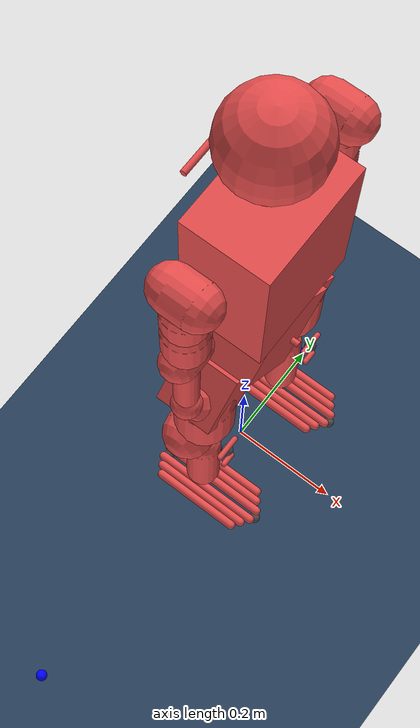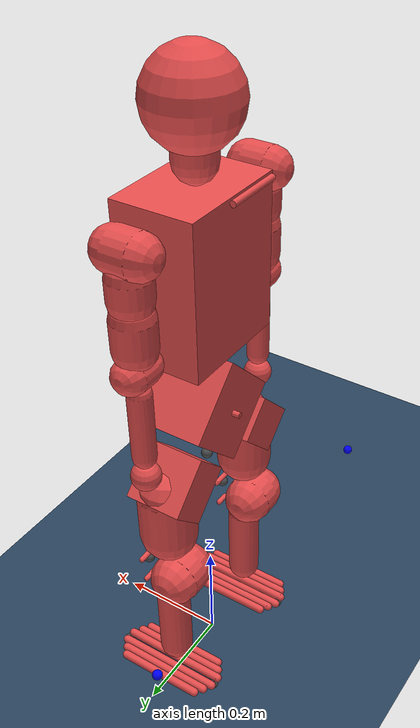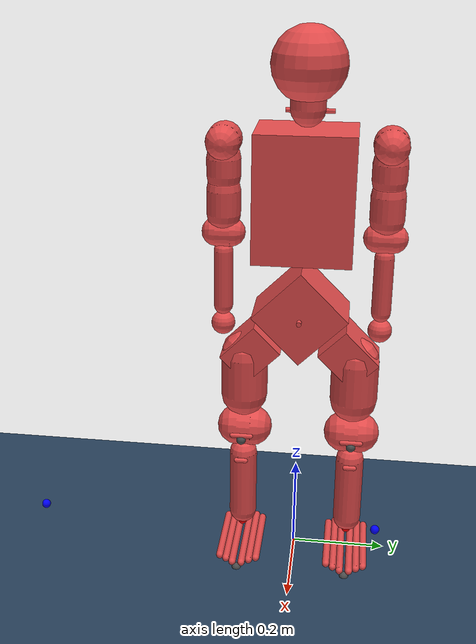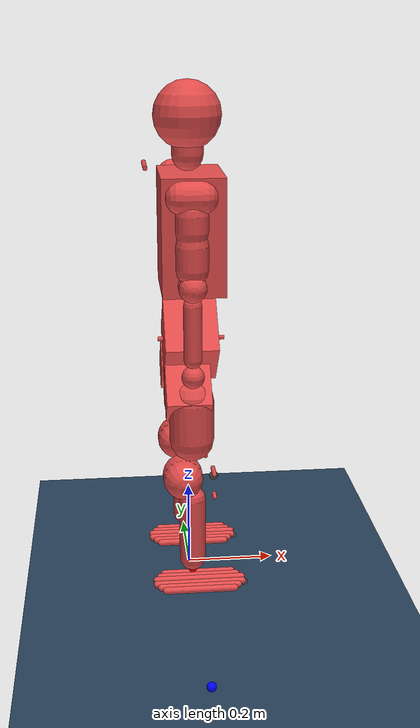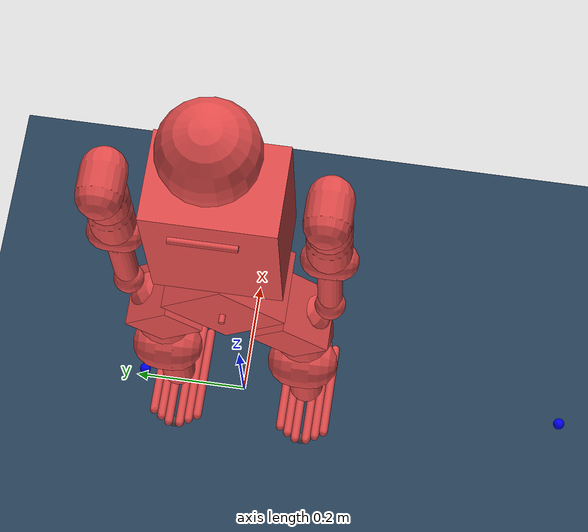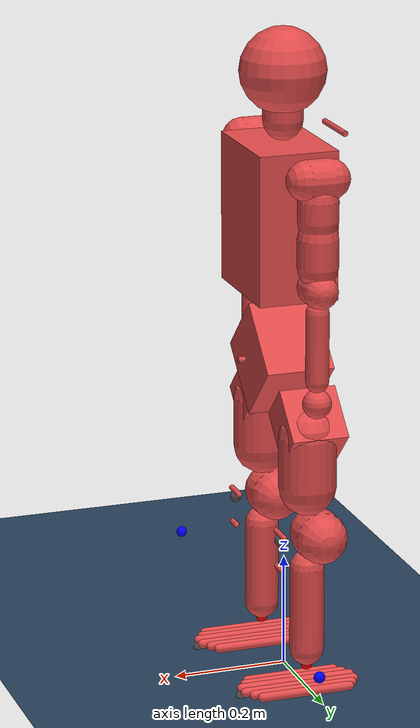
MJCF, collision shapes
<?xml version='1.0' encoding='utf-8'?>
<mujoco model="biped_s14">
  <compiler angle="radian" meshdir="meshes/"/>
  <size njmax="500" nconmax="100" />
  <default>
    <joint limited="true" armature="0.05" damping="0.2" frictionloss="0.02"/>
    <motor ctrllimited="true" ctrlrange="-100 100"/>
    <equality solref="0.005 1"/>
    <default class="collision">
      <geom material="collision" contype="1" conaffinity="1" user="2" rgba="0.9 0.3 0.3 0.2"/>
    </default>
  </default>
  <visual>
    <headlight diffuse="0.6 0.6 0.6" ambient="0.3 0.3 0.3" specular="0 0 0"/>
    <rgba haze="0.15 0.25 0.35 1"/>
    <global azimuth="160" elevation="-20"/>
  </visual>
  <asset>
    <texture type="skybox" builtin="gradient" rgb1="0.3 0.5 0.7" rgb2="0 0 0" width="512" height="3072"/>
    <texture type="2d" name="groundplane" builtin="checker" mark="edge" rgb1="0.2 0.3 0.4" rgb2="0.1 0.2 0.3"
      markrgb="0.8 0.8 0.8" width="300" height="300"/>
    <material name="groundplane" texture="groundplane" texuniform="true" texrepeat="5 5" reflectance="0.2"/>
    <material name="collision" rgba="0.1 0.5 0.9 0"/>
    <mesh name="torso" file="torso.STL"/>
    <mesh name="waist" file="waist.STL"/>
    <mesh name="l_leg_pitch" file="l_leg_pitch.STL"/>
    <mesh name="l_leg_roll" file="l_leg_roll.STL"/>
    <mesh name="l_leg_yaw" file="l_leg_yaw.STL"/>
    <mesh name="l_knee" file="l_knee.STL"/>
    <mesh name="l_foot_pitch" file="l_foot_pitch.STL"/>
    <mesh name="l_foot_roll" file="l_foot_roll.STL"/>
    <mesh name="r_leg_pitch" file="r_leg_pitch.STL"/>
    <mesh name="r_leg_roll" file="r_leg_roll.STL"/>
    <mesh name="r_leg_yaw" file="r_leg_yaw.STL"/>
    <mesh name="r_knee" file="r_knee.STL"/>
    <mesh name="r_foot_pitch" file="r_foot_pitch.STL"/>
    <mesh name="r_foot_roll" file="r_foot_roll.STL"/>
    <mesh name="l_arm_pitch" file="l_arm_pitch.STL"/>
    <mesh name="l_arm_roll" file="l_arm_roll.STL"/>
    <mesh name="l_arm_yaw" file="l_arm_yaw.STL"/>
    <mesh name="l_forearm" file="l_forearm.STL"/>
    <mesh name="r_arm_pitch" file="r_arm_pitch.STL"/>
    <mesh name="r_arm_roll" file="r_arm_roll.STL"/>
    <mesh name="r_arm_yaw" file="r_arm_yaw.STL"/>
    <mesh name="r_forearm" file="r_forearm.STL"/>
    <mesh name="head_yaw" file="head_yaw.STL"/>
    <mesh name="head_pitch" file="head_pitch.STL"/>
  </asset>

  <worldbody>
    <light pos="0 0 3.5" dir="0 0 -1" directional="true"/>
    <geom name="floor" size="0 0 0.05" type="plane" material="groundplane"/>
    <body name="base_link" pos="0 0 0.68">
      <freejoint />
      <site name="imu" pos="0 0 0" />
      <inertial pos="-0.00602072 -0.0005008 0.146576" quat="0 0.707107 0 0.707107" mass="8.01778" diaginertia="0.0859905 0.0673346 0.0420429"/>
      <geom type="mesh" contype="0" conaffinity="0" group="1" density="0" rgba="1 1 1 1" mesh="torso"/>
      <geom size="0.07 0.1 0.13" pos="0.01 0 0.14" type="box" group="3" class="collision"/>
      <geom size="0.005 0.05" pos="-0.09 0 0.285" quat="0.707105 0.707108 0 0" type="cylinder" group="3" class="collision"/>

      <!-- FrontUpperBody -->

      <body name="spine_1" pos="0.0 0.0 -0.09">
        <inertial pos="0 0 0" mass="0.01" diaginertia="1e-6 1e-6 1e-6"/>
        <geom type="sphere" size="0.01" rgba="0.3 0.3 0.3 1"   group="1"/> <!-- visual -->
        <geom type="sphere" size="0.01" rgba="0.6 0.6 0.6 0.8" group="3" class="collision"/>
      </body>

      <body name="spine_2" pos="0.0 0.0 0.00">
        <inertial pos="0 0 0" mass="0.01" diaginertia="1e-6 1e-6 1e-6"/>
        <geom type="sphere" size="0.01" rgba="0.3 0.3 0.3 1"   group="1"/> <!-- visual -->
        <geom type="sphere" size="0.01" rgba="0.6 0.6 0.6 0.8" group="3" class="collision"/>
      </body>

      <body name="left_shoulder" pos="0.00029999 0.063503 0.239926">
        <inertial pos="0 0 0" mass="0.01" diaginertia="1e-6 1e-6 1e-6"/>
        <geom type="sphere" size="0.01" rgba="0.3 0.3 0.3 1"   group="1"/> <!-- visual -->
        <geom type="sphere" size="0.01" rgba="0.6 0.6 0.6 0.8" group="3" class="collision"/>
      </body>

      <body name="right_shoulder" pos="0.00029999 -0.063503 0.239926">
        <inertial pos="0 0 0" mass="0.01" diaginertia="1e-6 1e-6 1e-6"/>
        <geom type="sphere" size="0.01" rgba="0.3 0.3 0.3 1"   group="1"/> <!-- visual -->
        <geom type="sphere" size="0.01" rgba="0.6 0.6 0.6 0.8" group="3" class="collision"/>
      </body>

      <body name="waist_yaw_link">
        <inertial pos="0.0015256 0.00013413 -0.119276" mass="4.60776" diaginertia="0.0210197 0.0145863 0.0145401"/>
        <joint name="waist_yaw_joint" pos="0 0 0" axis="0 0 1" range="-2.61799 2.61799" actuatorfrcrange="-50 50"/>
        <geom type="mesh" contype="0" conaffinity="0" group="1" density="0" rgba="1 1 1 1" mesh="waist"/>
        <geom size="0.06 0.07 0.07" pos="0.005 0 -0.11" quat="0.923764 0.382961 0 0" type="box" group="3" class="collision"/>
        <geom size="0.005 0.0065" pos="-0.0615 0 -0.11" quat="0.707105 0 0.707108 0" type="cylinder" group="3" class="collision"/>
        <geom size="0.005 0.0065" pos="0.078 0 -0.11" quat="0.707105 0 0.707108 0" type="cylinder" group="3" class="collision"/>

        <!-- FrontLowerBody -->

        <body name="spine" pos="0.0 0.0 -0.17">
          <inertial pos="0 0 0" mass="0.01" diaginertia="1e-6 1e-6 1e-6"/>
          <geom type="sphere" size="0.01" rgba="0.3 0.3 0.3 1"   group="1"/> <!-- visual -->
          <geom type="sphere" size="0.01" rgba="0.6 0.6 0.6 0.8" group="3" class="collision"/>
        </body>

        <!-- Dick -->
        <body name="dick" pos="0.0 0.0 -0.22">
          <inertial pos="0 0 0" mass="0.01" diaginertia="1e-6 1e-6 1e-6"/>
          <geom type="sphere" size="0.01" rgba="0.3 0.3 0.3 1"   group="1"/> <!-- visual -->
          <geom type="sphere" size="0.01" rgba="0.6 0.6 0.6 0.8" group="3" class="collision"/>
        </body>

        <body name="left_hip" pos="0.0 0.07 -0.22">
          <inertial pos="0 0 0" mass="0.01" diaginertia="1e-6 1e-6 1e-6"/>
          <geom type="sphere" size="0.01" rgba="0.3 0.3 0.3 1"   group="1"/> <!-- visual -->
          <geom type="sphere" size="0.01" rgba="0.6 0.6 0.6 0.8" group="3" class="collision"/>
        </body>

        <body name="right_hip" pos="0.0 -0.07 -0.22">
          <inertial pos="0 0 0" mass="0.01" diaginertia="1e-6 1e-6 1e-6"/>
          <geom type="sphere" size="0.01" rgba="0.3 0.3 0.3 1"   group="1"/> <!-- visual -->
          <geom type="sphere" size="0.01" rgba="0.6 0.6 0.6 0.8" group="3" class="collision"/>
        </body>

        <body name="leg_l1_link" pos="0 0.11751 -0.219916">
          <inertial pos="-0.00211316 -0.0289048 0.0293712" quat="0 0.707107 0 0.707107" mass="0.428776" diaginertia="0.00113479 0.00105689 0.00068134"/>
          <joint name="leg_l1_joint" pos="0 0 0" axis="0 0.707107 -0.707107" range="-3.228 2.356" actuatorfrcrange="-48 48" damping="0.2" frictionloss="0.1"/>
          <geom type="mesh" contype="0" conaffinity="0" group="1" density="0" rgba="1 1 1 1" mesh="l_leg_pitch"/>
          <geom size="0.05 0.04 0.05" pos="-0.007 -0.015 0.015" quat="0.923764 0.382961 0 0" type="box" group="3" class="collision"/>
          <body name="leg_l2_link">
            <inertial pos="0.00300817 1.847e-05 -0.0530936" mass="2.5" diaginertia="0.00730479 0.00721205 0.00242566"/>
            <joint name="leg_l2_joint" pos="0 0 0" axis="1 0 0" range="-0.845961 2.41414" actuatorfrcrange="-63 63" damping="0.2" frictionloss="0.1"/>
            <geom type="mesh" contype="0" conaffinity="0" group="1" density="0" rgba="1 1 1 1" mesh="l_leg_roll"/>
            <geom size="0.05 0.045" pos="0 0 -0.045" type="capsule" group="3" class="collision"/>
            <body name="leg_l3_link">
              <inertial pos="-0.0154497 -0.00591775 -0.174896" quat="0 0.707107 0 0.707107" mass="1.10967" diaginertia="0.00144923 0.00139772 0.00103599"/>
              <joint name="leg_l3_joint" pos="0 0 0" axis="0 0 1" range="-1.658 1.658" actuatorfrcrange="-48 48" damping="0.2" frictionloss="0.1"/>
              <geom type="mesh" contype="0" conaffinity="0" group="1" density="0" rgba="1 1 1 1" mesh="l_leg_yaw"/>
              <geom size="0.045 0.015" pos="-0.021 0 -0.182" quat="0.707388 0.706825 0 0" type="capsule" group="3" class="collision"/>
              <body name="leg_l4_link" pos="-0.021 0 -0.182">
                <inertial pos="0.0222881 0.00808286 -0.104779" mass="1.55038" diaginertia="0.0066605 0.00641861 0.00106882"/>
                <joint name="leg_l4_joint" pos="0 0 0" axis="0 1 0" range="0 2.61799" actuatorfrcrange="-47 47" damping="0.2" frictionloss="0.1"/>
                <geom type="mesh" contype="0" conaffinity="0" group="1" density="0" rgba="1 1 1 1" mesh="l_knee"/>
                <geom size="0.03 0.075" pos="0.021 0 -0.13" type="capsule" group="3" class="collision"/>
                <geom size="0.005 0.02" pos="0.07 0 0.01" quat="0.707388 0.706825 0 0" type="capsule" group="3" class="collision"/>
                <geom size="0.005 0.01" pos="0.072 0 -0.05" quat="0.707388 0.706825 0 0" type="capsule" group="3" class="collision"/>

                <!-- Left Knee -->
                <body name="left_knee" pos="0.07 0.0 0.0">
                  <inertial pos="0 0 0" mass="0.01" diaginertia="1e-6 1e-6 1e-6"/>
                  <geom type="sphere" size="0.01" rgba="0.3 0.3 0.3 1"   group="1"/> <!-- visual -->
                  <geom type="sphere" size="0.01" rgba="0.6 0.6 0.6 0.8" group="3" class="collision"/>
                </body>

                <body name="leg_l5_link" pos="0.021 0 -0.235">
                  <inertial pos="0 0 0" quat="0.5 0.5 -0.5 0.5" mass="0.0692377" diaginertia="1.172e-05 6.7e-06 6.7e-06"/>
                  <joint name="leg_l5_joint" pos="0 0 0" axis="0 1 0" range="-0.872665 0.523599" actuatorfrcrange="-30 30" damping="0.2" frictionloss="0.1"/>
                  <geom type="mesh" contype="0" conaffinity="0" group="1" density="0" rgba="1 1 1 1" mesh="l_foot_pitch"/>

                  <!-- Left ankle point -->
                  <body name="left_ankle_anchor" pos="0.0 -0.7 0.0">
                    <inertial pos="0 0 0" mass="0.01" diaginertia="1e-6 1e-6 1e-6"/>
                    <geom type="sphere" size="0.01" rgba="0.0 0.0 1.0 1" group="4"/> <!-- visual -->
                    <geom type="sphere" size="0.01" rgba="0.6 0.6 0.6 0.8" group="3" class="collision"/>
                  </body>

                  <body name="leg_l6_link" >
                    <inertial pos="-0.00410545 0 -0.0265062" quat="0 0.707107 0 0.707107" mass="0.348195" diaginertia="0.00096359 0.00090207 0.00019603"/>
                    <joint name="leg_l6_joint" pos="0 0 0" axis="1 0 0" range="-0.261799 0.261799" actuatorfrcrange="-15 15" damping="0.2" frictionloss="0.1"/>
                    <geom type="sphere" size="0.01" rgba="1.0 0.0 0.0 1" group="4"/>
                    <geom type="mesh" contype="0" conaffinity="0" group="1" density="0" rgba="1 1 1 1" mesh="l_foot_roll"/>
                    <geom size="0.008 0.08" pos="0.015 -0.04 -0.034" quat="0.707105 0 -0.707108 0" type="capsule" group="3" class="collision"/>
                    <geom size="0.008 0.09" pos="0.015 -0.025 -0.034" quat="0.707105 0 -0.707108 0" type="capsule" group="3" class="collision"/>
                    <geom size="0.008 0.1" pos="0.016 -0.01 -0.034" quat="0.707105 0 -0.707108 0" type="capsule" group="3" class="collision"/>
                    <geom size="0.008 0.08" pos="0.015 0.04 -0.034" quat="0.707105 0 -0.707108 0" type="capsule" group="3" class="collision"/>
                    <geom size="0.008 0.09" pos="0.015 0.025 -0.034" quat="0.707105 0 -0.707108 0" type="capsule" group="3" class="collision"/>
                    <geom size="0.008 0.1" pos="0.016 0.01 -0.034" quat="0.707105 0 -0.707108 0" type="capsule" group="3" class="collision"/>

                    <!-- Front toe -->
                    <body name="toe_l6_front" pos="0.120 0.0 -0.045">
                      <inertial pos="0 0 0" mass="0.01" diaginertia="1e-6 1e-6 1e-6"/>
                      <geom type="sphere" size="0.01" rgba="0.3 0.3 0.3 1"   group="1"/> <!-- visual -->
                      <geom type="sphere" size="0.01" rgba="0.6 0.6 0.6 0.8" group="3" class="collision"/>
                    </body>

                    <!-- Mid-inner toe -->

                    <!-- Mid-outer toe -->

                    <!-- Rear toe -->
                    <body name="toe_l6_rear" pos="-0.08 0.0 -0.045">
                      <inertial pos="0 0 0" mass="0.01" diaginertia="1e-6 1e-6 1e-6"/>
                      <geom type="sphere" size="0.01" rgba="0.3 0.3 0.3 1"   group="1"/>
                      <geom type="sphere" size="0.01" rgba="0.6 0.6 0.6 0.8" group="3" class="collision"/>
                    </body>

                  </body>
                </body>
              </body>
            </body>
          </body>
        </body>
        <body name="leg_r1_link" pos="0 -0.11751 -0.219916">
          <inertial pos="-0.00211316 0.0289048 0.0293712" quat="0 0.707107 0 0.707107" mass="0.428776" diaginertia="0.00113479 0.00105689 0.00068134"/>
          <joint name="leg_r1_joint" pos="0 0 0" axis="0 -0.707107 -0.707107" range="-2.356 3.228" actuatorfrcrange="-48 48" damping="0.2" frictionloss="0.1"/>
          <geom type="mesh" contype="0" conaffinity="0" group="1" density="0" rgba="1 1 1 1" mesh="r_leg_pitch"/>
          <geom size="0.05 0.04 0.05" pos="-0.007 0.015 0.015" quat="0.923764 -0.382961 0 0" type="box" group="3" class="collision"/>
          <body name="leg_r2_link">
            <inertial pos="0.00300817 1.847e-05 -0.0530936" mass="2.5" diaginertia="0.00730479 0.00721205 0.00242566"/>
            <joint name="leg_r2_joint" pos="0 0 0" axis="1 0 0" range="-2.41414 0.847008" actuatorfrcrange="-63 63" damping="0.2" frictionloss="0.1"/>
            <geom type="mesh" contype="0" conaffinity="0" group="1" density="0" rgba="1 1 1 1" mesh="r_leg_roll"/>
            <geom size="0.05 0.045" pos="0 0 -0.045" type="capsule" group="3" class="collision"/>
            <body name="leg_r3_link">
              <inertial pos="-0.0154497 0.00591775 -0.174896" quat="0 0.707107 0 0.707107" mass="1.10967" diaginertia="0.00144923 0.00139772 0.00103599"/>
              <joint name="leg_r3_joint" pos="0 0 0" axis="0 0 1" range="-1.658 1.658" actuatorfrcrange="-48 48" damping="0.2" frictionloss="0.1"/>
              <geom type="mesh" contype="0" conaffinity="0" group="1" density="0" rgba="1 1 1 1" mesh="r_leg_yaw"/>
              <geom size="0.045 0.015" pos="-0.021 0 -0.182" quat="0.707388 0.706825 0 0" type="capsule" group="3" class="collision"/>
              <body name="leg_r4_link" pos="-0.021 0 -0.182">
                <inertial pos="0.0222881 -0.00808286 -0.104779" mass="1.55038" diaginertia="0.0066605 0.00641861 0.00106882"/>
                <joint name="leg_r4_joint" pos="0 0 0" axis="0 1 0" range="0 2.61799" actuatorfrcrange="-47 47" damping="0.2" frictionloss="0.1"/>
                <geom type="mesh" contype="0" conaffinity="0" group="1" density="0" rgba="1 1 1 1" mesh="r_knee"/>
                <geom size="0.03 0.075" pos="0.021 0 -0.13" type="capsule" group="3" class="collision"/>
                <geom size="0.005 0.02" pos="0.07 0 0.01" quat="0.707388 0.706825 0 0" type="capsule" group="3" class="collision"/>
                <geom size="0.005 0.01" pos="0.072 0 -0.05" quat="0.707388 0.706825 0 0" type="capsule" group="3" class="collision"/>

                <!-- Right Knee -->
                <body name="right_knee" pos="0.07 0.0 0.0">
                  <inertial pos="0 0 0" mass="0.01" diaginertia="1e-6 1e-6 1e-6"/>
                  <geom type="sphere" size="0.01" rgba="0.3 0.3 0.3 1"   group="1"/> <!-- visual -->
                  <geom type="sphere" size="0.01" rgba="0.6 0.6 0.6 0.8" group="3" class="collision"/>
                </body>

                <body name="leg_r5_link" pos="0.021 0 -0.235">
                  <inertial pos="0 0 0" quat="0.5 0.5 -0.5 0.5" mass="0.0692377" diaginertia="1.172e-05 6.7e-06 6.7e-06"/>
                  <joint name="leg_r5_joint" pos="0 0 0" axis="0 1 0" range="-0.872665 0.523599" actuatorfrcrange="-30 30" damping="0.2" frictionloss="0.1"/>
                  <geom type="mesh" contype="0" conaffinity="0" group="1" density="0" rgba="1 1 1 1" mesh="r_foot_pitch"/>

                  <!-- Right ankle point -->
                  <body name="right_ankle_anchor" pos="0.0 0.3 0.0">
                    <inertial pos="0 0 0" mass="0.01" diaginertia="1e-6 1e-6 1e-6"/>
                    <geom type="sphere" size="0.01" rgba="0.0 0.0 1.0 1" group="2"/> <!-- visual -->
                    <geom type="sphere" size="0.01" rgba="0.6 0.6 0.6 0.8" group="3" class="collision"/>
                  </body>

                  <body name="leg_r6_link">
                    <inertial pos="-0.00410545 0 -0.0265062" quat="0 0.707107 0 0.707107" mass="0.348195" diaginertia="0.00096359 0.00090207 0.00019603"/>
                    <joint name="leg_r6_joint" pos="0 0 0" axis="1 0 0" range="-0.261799 0.261799" actuatorfrcrange="-15 15" damping="0.2" frictionloss="0.1"/>
                    <geom type="mesh" contype="0" conaffinity="0" group="1" density="0" rgba="1 1 1 1" mesh="r_foot_roll"/>
                    <geom type="sphere" size="0.01" rgba="1.0 0.0 0.0 1" group="2"/>
                    <geom size="0.008 0.08" pos="0.015 -0.04 -0.034" quat="0.707105 0 -0.707108 0" type="capsule" group="3" class="collision"/>
                    <geom size="0.008 0.09" pos="0.015 -0.025 -0.034" quat="0.707105 0 -0.707108 0" type="capsule" group="3" class="collision"/>
                    <geom size="0.008 0.1" pos="0.016 -0.01 -0.034" quat="0.707105 0 -0.707108 0" type="capsule" group="3" class="collision"/>
                    <geom size="0.008 0.08" pos="0.015 0.04 -0.034" quat="0.707105 0 -0.707108 0" type="capsule" group="3" class="collision"/>
                    <geom size="0.008 0.09" pos="0.015 0.025 -0.034" quat="0.707105 0 -0.707108 0" type="capsule" group="3" class="collision"/>
                    <geom size="0.008 0.1" pos="0.016 0.01 -0.034" quat="0.707105 0 -0.707108 0" type="capsule" group="3" class="collision"/>

                    <!-- Front toe -->
                    <body name="toe_r6_front" pos="0.120 0.0 -0.045">
                      <inertial pos="0 0 0" mass="0.01" diaginertia="1e-6 1e-6 1e-6"/>
                      <geom type="sphere" size="0.01" rgba="0.3 0.3 0.3 1"   group="1"/> <!-- visual -->
                      <geom type="sphere" size="0.01" rgba="0.6 0.6 0.6 0.8" group="3" class="collision"/>
                    </body>

                    <!-- Mid-inner toe -->

                    <!-- Mid-outer toe -->

                    <!-- Rear toe -->
                    <body name="toe_r6_rear" pos="-0.08 0.0 -0.045">
                      <inertial pos="0 0 0" mass="0.01" diaginertia="1e-6 1e-6 1e-6"/>
                      <geom type="sphere" size="0.01" rgba="0.3 0.3 0.3 1"   group="1"/>
                      <geom type="sphere" size="0.01" rgba="0.6 0.6 0.6 0.8" group="3" class="collision"/>
                    </body>

                  </body>
                </body>
              </body>
            </body>
          </body>
        </body>
      </body>
      <body name="zarm_l1_link" pos="0.00029999 0.163503 0.239926">
        <inertial pos="0.00360552 -0.00144553 1.956e-05" quat="0 0.707107 0 0.707107" mass="0.373016" diaginertia="0.00015171 0.00013133 0.00011508"/>
        <joint name="zarm_l1_joint" pos="0 0 0" axis="0 1 0" range="-3.14159 2.0944" actuatorfrcrange="-12 12" damping="0.2" frictionloss="0.1"/>
        <geom type="mesh" contype="0" conaffinity="0" group="1" density="0" rgba="1 1 1 1" mesh="l_arm_pitch"/>
        <geom size="0.035 0.02" quat="0.707105 0 0.707108 0" type="capsule" group="3" class="collision"/>
        <body name="zarm_l2_link">
          <inertial pos="0.00089424 0 -0.0423894" quat="0.707107 0 0 0.707107" mass="0.151129" diaginertia="0.00022693 0.00018029 0.00015001"/>
          <joint name="zarm_l2_joint" pos="0 0 0" axis="1 0 0" range="-0.349066 3.49066" actuatorfrcrange="-12 12" damping="0.2" frictionloss="0.1"/>
          <geom type="mesh" contype="0" conaffinity="0" group="1" density="0" rgba="1 1 1 1" mesh="l_arm_roll"/>
          <geom size="0.035 0.0175" pos="0 0 -0.0525" type="capsule" group="3" class="collision"/>
          <body name="zarm_l3_link">
            <inertial pos="-0.00011141 -0.00359387 -0.144176" quat="0.707107 0 0 0.707107" mass="0.669223" diaginertia="0.00172455 0.00170115 0.00031003"/>
            <joint name="zarm_l3_joint" pos="0 0 0" axis="0 0 1" range="-1.5708 1.5708" actuatorfrcrange="-12 12" damping="0.2" frictionloss="0.1"/>
            <geom type="mesh" contype="0" conaffinity="0" group="1" density="0" rgba="1 1 1 1" mesh="l_arm_yaw"/>
            <geom size="0.035 0.025" pos="0 0 -0.125" type="capsule" group="3" class="collision"/>
            <body name="zarm_l4_link" pos="0 0 -0.188">
              <inertial pos="-0.000506329 -0.000850231 -0.10101" quat="1 0.000562672 -0.000316367 -4.25256e-05" mass="0.172694" diaginertia="0.000962811 0.000915927 0.000122039"/>
              <joint name="zarm_l4_joint" pos="0 0 0" axis="0 1 0" range="-2.26893 0" actuatorfrcrange="-12 12" damping="0.2" frictionloss="0.1"/>
              <geom type="mesh" contype="0" conaffinity="0" group="1" density="0" rgba="1 1 1 1" mesh="l_forearm"/>
              <geom size="0.03 0.015" quat="0.707388 0.706825 0 0" type="capsule" group="3" class="collision"/>
              <geom size="0.02 0.06" pos="0 0 -0.1" type="capsule" group="3" class="collision"/>
              <geom size="0.025" pos="0 0 -0.2" group="3" class="collision"/>
              <body name="left_wrist_link" pos="0 0 -0.2">
                <inertial pos="0 0 0" quat="1 0 0 0" mass="0.05" diaginertia="0.0001 0.0001 0.0001" />
                <joint name="left_wrist_joint" pos="0 0 0" axis="0 0 1" range="-1.5708 1.5708" actuatorfrcrange="-12 12"/>
                <geom type="sphere" size="0.02" group="3" class="collision"/>
                <site size="0.02" pos="0 0 0" rgba="0.2 0.2 0.2 1"/>
              </body>
            </body>
          </body>
        </body>
      </body>
      <body name="zarm_r1_link" pos="0.00029999 -0.163503 0.239926">
        <inertial pos="0.00360552 -0.00144553 1.956e-05" quat="0 0.707107 0 0.707107" mass="0.373016" diaginertia="0.00015171 0.00013133 0.00011508"/>
        <joint name="zarm_r1_joint" pos="0 0 0" axis="0 1 0" range="-3.14159 2.0944" actuatorfrcrange="-12 12" damping="0.2" frictionloss="0.1"/>
        <geom type="mesh" contype="0" conaffinity="0" group="1" density="0" rgba="1 1 1 1" mesh="r_arm_pitch"/>
        <geom size="0.035 0.02" quat="0.707105 0 0.707108 0" type="capsule" group="3" class="collision"/>
        <body name="zarm_r2_link">
          <inertial pos="0.00089424 0 -0.0423894" quat="0.707107 0 0 0.707107" mass="0.151129" diaginertia="0.00022693 0.00018029 0.00015001"/>
          <joint name="zarm_r2_joint" pos="0 0 0" axis="1 0 0" range="-3.49066 0.349066" actuatorfrcrange="-12 12" damping="0.2" frictionloss="0.1"/>
          <geom type="mesh" contype="0" conaffinity="0" group="1" density="0" rgba="1 1 1 1" mesh="r_arm_roll"/>
          <geom size="0.035 0.0175" pos="0 0 -0.0525" type="capsule" group="3" class="collision"/>
          <body name="zarm_r3_link">
            <inertial pos="-0.00011141 -0.00359387 -0.144176" quat="0.707107 0 0 0.707107" mass="0.669223" diaginertia="0.00172455 0.00170115 0.00031003"/>
            <joint name="zarm_r3_joint" pos="0 0 0" axis="0 0 1" range="-1.5708 1.5708" actuatorfrcrange="-12 12" damping="0.2" frictionloss="0.1"/>
            <geom type="mesh" contype="0" conaffinity="0" group="1" density="0" rgba="1 1 1 1" mesh="r_arm_yaw"/>
            <geom size="0.035 0.025" pos="0 0 -0.125" type="capsule" group="3" class="collision"/>
            <body name="zarm_r4_link" pos="0 0 -0.188">
              <inertial pos="-0.000506329 -0.000850231 -0.10101" quat="1 0.000562672 -0.000316367 -4.25256e-05" mass="0.172694" diaginertia="0.000962811 0.000915927 0.000122039"/>
              <joint name="zarm_r4_joint" pos="0 0 0" axis="0 1 0" range="-2.26893 0" actuatorfrcrange="-12 12" damping="0.2" frictionloss="0.1"/>
              <geom type="mesh" contype="0" conaffinity="0" group="1" density="0" rgba="1 1 1 1" mesh="r_forearm"/>
              <geom size="0.03 0.015" quat="0.707388 0.706825 0 0" type="capsule" group="3" class="collision"/>
              <geom size="0.02 0.06" pos="0 0 -0.1" type="capsule" group="3" class="collision"/>
              <geom size="0.025" pos="0 0 -0.2" group="3" class="collision"/>
              <body name="right_wrist_link" pos="0 0 -0.2">
                <inertial pos="0 0 0" quat="1 0 0 0" mass="0.05" diaginertia="0.0001 0.0001 0.0001" />
                <joint name="right_wrist_joint" pos="0 0 0" axis="0 0 1" range="-1.5708 1.5708" actuatorfrcrange="-12 12"/>
                <geom type="sphere" size="0.02" group="3" class="collision"/>
                <site size="0.02" pos="0 0 0" rgba="0.2 0.2 0.2 1"/>
              </body>
            </body>
          </body>
        </body>
      </body>
      <body name="head_yaw" pos="0.004 0 0.35618">
        <inertial pos="-0.00081546 0.00754474 0.0168097" mass="1.03078" diaginertia="0.002156 0.00189151 0.00071659"/>
        <geom type="mesh" contype="0" conaffinity="0" group="1" density="0" rgba="1 1 1 1" mesh="head_yaw"/>
        <geom size="0.035 0.05" type="capsule" group="3" class="collision"/>
        <body name="head_pitch">
          <inertial pos="0.014664 0.00044662 0.0574289" quat="0 0.707107 0 0.707107" mass="0.33655" diaginertia="0.00150717 0.00141557 0.00119625"/>
          <geom type="mesh" contype="0" conaffinity="0" group="1" density="0" rgba="1 1 1 1" mesh="head_pitch"/>
          <geom type="sphere" size="0.075" pos="0 0 0.035" group="3" class="collision"/>
        </body>
      </body>
    </body>
  </worldbody>
  <actuator>
    <motor gear="1" joint="waist_yaw_joint" name="waist_yaw_joint_motor" ctrllimited="true" ctrlrange="-50 50" />
    <motor gear="1" joint="leg_l1_joint" name="leg_l1_joint_motor" ctrllimited="true" ctrlrange="-48 48" />
    <motor gear="1" joint="leg_l2_joint" name="leg_l2_joint_motor" ctrllimited="true" ctrlrange="-63 63" />
    <motor gear="1" joint="leg_l3_joint" name="leg_l3_joint_motor" ctrllimited="true" ctrlrange="-48 48" />
    <motor gear="1" joint="leg_l4_joint" name="leg_l4_joint_motor" ctrllimited="true" ctrlrange="-47 47" />
    <motor gear="1" joint="leg_l5_joint" name="leg_l5_joint_motor" ctrllimited="true" ctrlrange="-30 30" />
    <motor gear="1" joint="leg_l6_joint" name="leg_l6_joint_motor" ctrllimited="true" ctrlrange="-15 15" />
    <motor gear="1" joint="leg_r1_joint" name="leg_r1_joint_motor" ctrllimited="true" ctrlrange="-48 48" />
    <motor gear="1" joint="leg_r2_joint" name="leg_r2_joint_motor" ctrllimited="true" ctrlrange="-63 63" />
    <motor gear="1" joint="leg_r3_joint" name="leg_r3_joint_motor" ctrllimited="true" ctrlrange="-48 48" />
    <motor gear="1" joint="leg_r4_joint" name="leg_r4_joint_motor" ctrllimited="true" ctrlrange="-47 47" />
    <motor gear="1" joint="leg_r5_joint" name="leg_r5_joint_motor" ctrllimited="true" ctrlrange="-30 30" />
    <motor gear="1" joint="leg_r6_joint" name="leg_r6_joint_motor" ctrllimited="true" ctrlrange="-15 15" />
    <motor gear="1" joint="zarm_l1_joint" name="zarm_l1_joint_motor" ctrllimited="true" ctrlrange="-12 12" />
    <motor gear="1" joint="zarm_l2_joint" name="zarm_l2_joint_motor" ctrllimited="true" ctrlrange="-12 12" />
    <motor gear="1" joint="zarm_l3_joint" name="zarm_l3_joint_motor" ctrllimited="true" ctrlrange="-12 12" />
    <motor gear="1" joint="zarm_l4_joint" name="zarm_l4_joint_motor" ctrllimited="true" ctrlrange="-12 12" />
    <motor gear="1" joint="left_wrist_joint" name="left_wrist_joint_motor" ctrllimited="true" ctrlrange="-12 12" />
    <motor gear="1" joint="zarm_r1_joint" name="zarm_r1_joint_motor" ctrllimited="true" ctrlrange="-12 12" />
    <motor gear="1" joint="zarm_r2_joint" name="zarm_r2_joint_motor" ctrllimited="true" ctrlrange="-12 12" />
    <motor gear="1" joint="zarm_r3_joint" name="zarm_r3_joint_motor" ctrllimited="true" ctrlrange="-12 12" />
    <motor gear="1" joint="zarm_r4_joint" name="zarm_r4_joint_motor" ctrllimited="true" ctrlrange="-12 12" />
    <motor gear="1" joint="right_wrist_joint" name="right_wrist_joint_motor" ctrllimited="true" ctrlrange="-12 12" />
  </actuator>
  <sensor>
    <accelerometer name="BodyAcc" site="imu"/>
    <velocimeter name="BodyVel" site="imu"/>
    <gyro name="BodyGyro" site="imu"/>
    <framepos name="BodyPos" objtype="site" objname="imu"/>
    <framequat name="BodyQuat" objtype="site" objname="imu"/>
    <jointpos name="waist_yaw_joint_pos" joint="waist_yaw_joint" />
    <jointpos name="leg_l1_joint_pos" joint="leg_l1_joint" />
    <jointpos name="leg_l2_joint_pos" joint="leg_l2_joint" />
    <jointpos name="leg_l3_joint_pos" joint="leg_l3_joint" />
    <jointpos name="leg_l4_joint_pos" joint="leg_l4_joint" />
    <jointpos name="leg_l5_joint_pos" joint="leg_l5_joint" />
    <jointpos name="leg_l6_joint_pos" joint="leg_l6_joint" />
    <jointpos name="leg_r1_joint_pos" joint="leg_r1_joint" />
    <jointpos name="leg_r2_joint_pos" joint="leg_r2_joint" />
    <jointpos name="leg_r3_joint_pos" joint="leg_r3_joint" />
    <jointpos name="leg_r4_joint_pos" joint="leg_r4_joint" />
    <jointpos name="leg_r5_joint_pos" joint="leg_r5_joint" />
    <jointpos name="leg_r6_joint_pos" joint="leg_r6_joint" />
    <jointpos name="zarm_l1_joint_pos" joint="zarm_l1_joint" />
    <jointpos name="zarm_l2_joint_pos" joint="zarm_l2_joint" />
    <jointpos name="zarm_l3_joint_pos" joint="zarm_l3_joint" />
    <jointpos name="zarm_l4_joint_pos" joint="zarm_l4_joint" />
    <jointpos name="zarm_r1_joint_pos" joint="zarm_r1_joint" />
    <jointpos name="zarm_r2_joint_pos" joint="zarm_r2_joint" />
    <jointpos name="zarm_r3_joint_pos" joint="zarm_r3_joint" />
    <jointpos name="zarm_r4_joint_pos" joint="zarm_r4_joint" />
    <jointvel name="leg_l1_joint_vel" joint="leg_l1_joint" />
    <jointvel name="leg_l2_joint_vel" joint="leg_l2_joint" />
    <jointvel name="leg_l3_joint_vel" joint="leg_l3_joint" />
    <jointvel name="leg_l4_joint_vel" joint="leg_l4_joint" />
    <jointvel name="leg_l5_joint_vel" joint="leg_l5_joint" />
    <jointvel name="leg_l6_joint_vel" joint="leg_l6_joint" />
    <jointvel name="leg_r1_joint_vel" joint="leg_r1_joint" />
    <jointvel name="leg_r2_joint_vel" joint="leg_r2_joint" />
    <jointvel name="leg_r3_joint_vel" joint="leg_r3_joint" />
    <jointvel name="leg_r4_joint_vel" joint="leg_r4_joint" />
    <jointvel name="leg_r5_joint_vel" joint="leg_r5_joint" />
    <jointvel name="leg_r6_joint_vel" joint="leg_r6_joint" />
    <jointvel name="waist_yaw_joint_vel" joint="waist_yaw_joint" />
    <jointvel name="zarm_l1_joint_vel" joint="zarm_l1_joint" />
    <jointvel name="zarm_l2_joint_vel" joint="zarm_l2_joint" />
    <jointvel name="zarm_l3_joint_vel" joint="zarm_l3_joint" />
    <jointvel name="zarm_l4_joint_vel" joint="zarm_l4_joint" />
    <jointvel name="zarm_r1_joint_vel" joint="zarm_r1_joint" />
    <jointvel name="zarm_r2_joint_vel" joint="zarm_r2_joint" />
    <jointvel name="zarm_r3_joint_vel" joint="zarm_r3_joint" />
    <jointvel name="zarm_r4_joint_vel" joint="zarm_r4_joint" />
  </sensor>
</mujoco>
